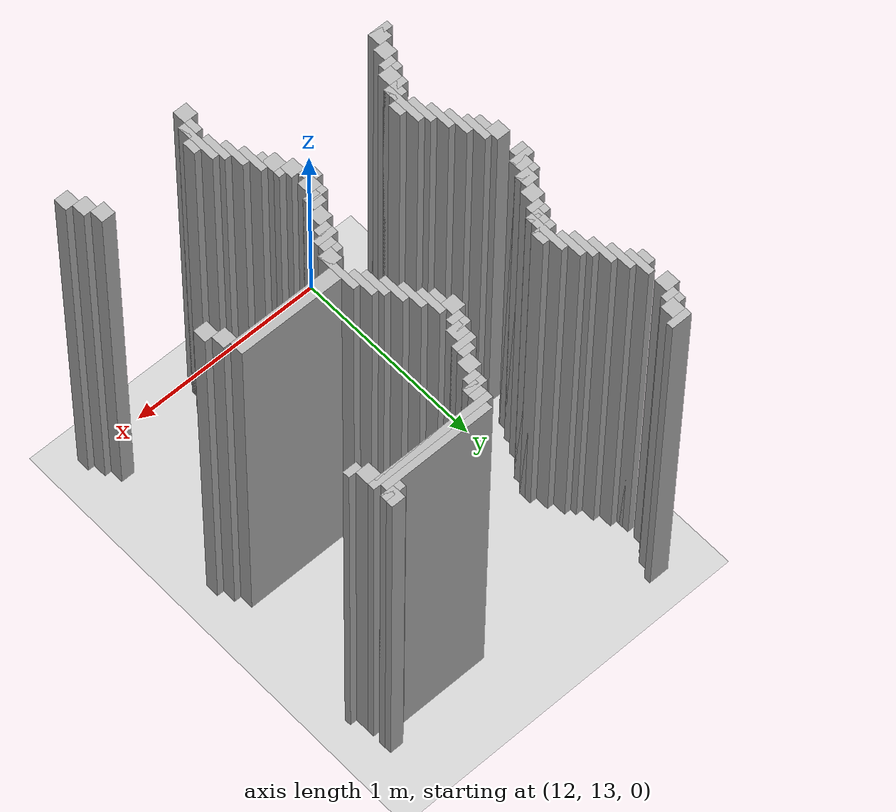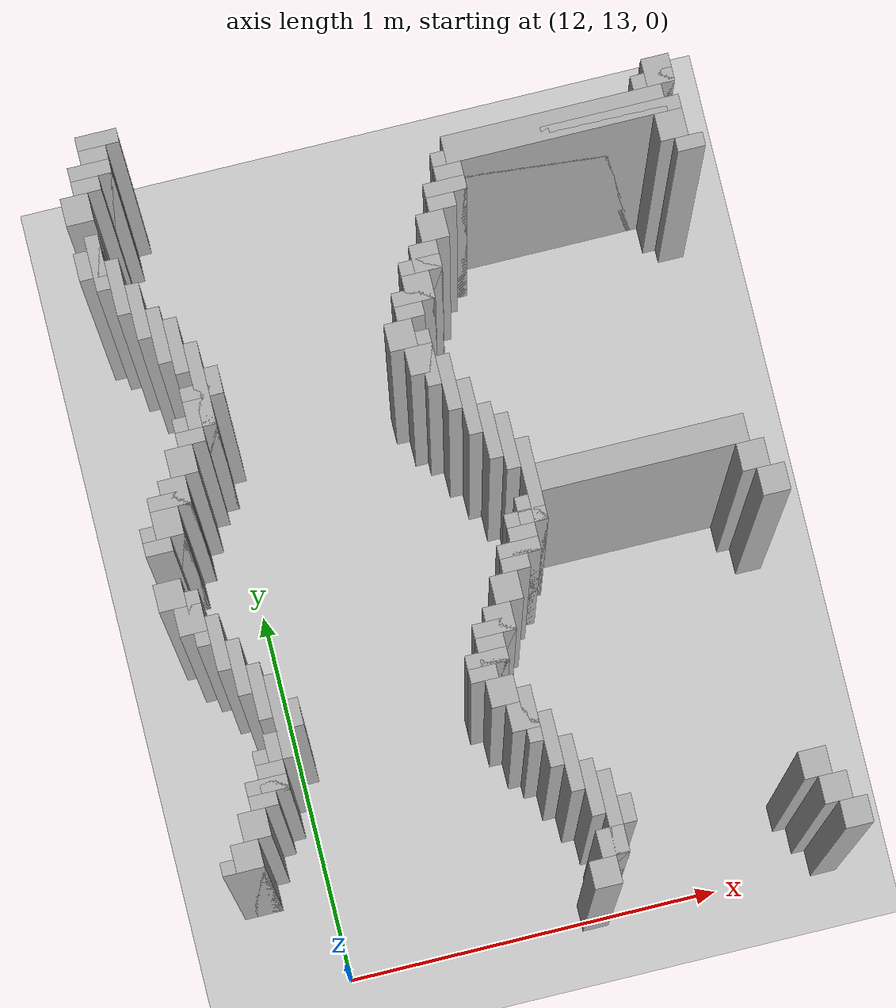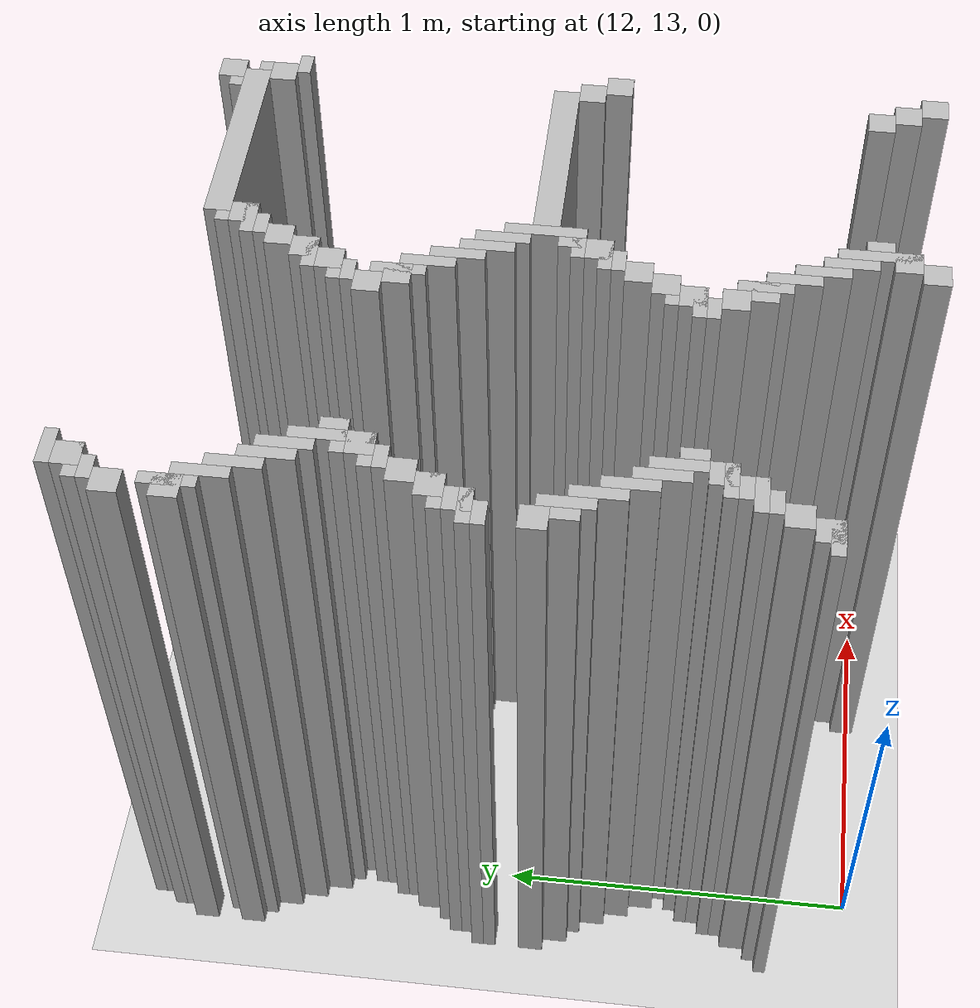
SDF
<sdf version="1.6">
 <world name="slam_world">
  <model name="ground_plane">
   <static>true</static>
   <link name="link">
    <collision name="collision">
     <geometry><plane><normal>0 0 1</normal><size>100 100</size></plane></geometry>
    </collision>
    <visual name="visual">
     <geometry><plane><normal>0 0 1</normal><size>100 100</size></plane></geometry>
     <material>
      <ambient>0.8 0.8 0.8 1</ambient>
      <diffuse>0.8 0.8 0.8 1</diffuse>
      <specular>0.8 0.8 0.8 1</specular>
     </material>
    </visual>
   </link>
  </model>
  <model name="wall_797">
   <static>true</static>
   <pose>11.885150812064964 15.052204176334106 1.0 0 0 0</pose>
   <link name="link">
    <collision name="collision">
     <geometry><box><size>0.10440835266821345 0.03480278422273782 2.0</size></box></geometry>
    </collision>
    <visual name="visual">
     <geometry><box><size>0.10440835266821345 0.03480278422273782 2.0</size></box></geometry>
     <material><ambient>0.5 0.5 0.5 1</ambient><diffuse>0.7 0.7 0.7 1</diffuse></material>
    </visual>
   </link>
  </model>
  <model name="wall_809">
   <static>true</static>
   <pose>11.867749419953595 15.0 1.0 0 0 0</pose>
   <link name="link">
    <collision name="collision">
     <geometry><box><size>0.06960556844547564 0.06960556844547564 2.0</size></box></geometry>
    </collision>
    <visual name="visual">
     <geometry><box><size>0.06960556844547564 0.06960556844547564 2.0</size></box></geometry>
     <material><ambient>0.5 0.5 0.5 1</ambient><diffuse>0.7 0.7 0.7 1</diffuse></material>
    </visual>
   </link>
  </model>
  <model name="wall_823">
   <static>true</static>
   <pose>11.850348027842227 14.982598607888631 1.0 0 0 0</pose>
   <link name="link">
    <collision name="collision">
     <geometry><box><size>0.10440835266821345 0.03480278422273782 2.0</size></box></geometry>
    </collision>
    <visual name="visual">
     <geometry><box><size>0.10440835266821345 0.03480278422273782 2.0</size></box></geometry>
     <material><ambient>0.5 0.5 0.5 1</ambient><diffuse>0.7 0.7 0.7 1</diffuse></material>
    </visual>
   </link>
  </model>
  <model name="wall_832">
   <static>true</static>
   <pose>11.832946635730858 14.947795823665892 1.0 0 0 0</pose>
   <link name="link">
    <collision name="collision">
     <geometry><box><size>0.06960556844547564 0.03480278422273782 2.0</size></box></geometry>
    </collision>
    <visual name="visual">
     <geometry><box><size>0.06960556844547564 0.03480278422273782 2.0</size></box></geometry>
     <material><ambient>0.5 0.5 0.5 1</ambient><diffuse>0.7 0.7 0.7 1</diffuse></material>
    </visual>
   </link>
  </model>
  <model name="wall_845">
   <static>true</static>
   <pose>11.79814385150812 14.895591647331786 1.0 0 0 0</pose>
   <link name="link">
    <collision name="collision">
     <geometry><box><size>0.06960556844547564 0.06960556844547564 2.0</size></box></geometry>
    </collision>
    <visual name="visual">
     <geometry><box><size>0.06960556844547564 0.06960556844547564 2.0</size></box></geometry>
     <material><ambient>0.5 0.5 0.5 1</ambient><diffuse>0.7 0.7 0.7 1</diffuse></material>
    </visual>
   </link>
  </model>
  <model name="wall_846">
   <static>true</static>
   <pose>13.259860788863108 14.895591647331786 1.0 0 0 0</pose>
   <link name="link">
    <collision name="collision">
     <geometry><box><size>0.06960556844547564 0.06960556844547564 2.0</size></box></geometry>
    </collision>
    <visual name="visual">
     <geometry><box><size>0.06960556844547564 0.06960556844547564 2.0</size></box></geometry>
     <material><ambient>0.5 0.5 0.5 1</ambient><diffuse>0.7 0.7 0.7 1</diffuse></material>
    </visual>
   </link>
  </model>
  <model name="wall_855">
   <static>true</static>
   <pose>13.24245939675174 14.878190255220417 1.0 0 0 0</pose>
   <link name="link">
    <collision name="collision">
     <geometry><box><size>0.10440835266821345 0.03480278422273782 2.0</size></box></geometry>
    </collision>
    <visual name="visual">
     <geometry><box><size>0.10440835266821345 0.03480278422273782 2.0</size></box></geometry>
     <material><ambient>0.5 0.5 0.5 1</ambient><diffuse>0.7 0.7 0.7 1</diffuse></material>
    </visual>
   </link>
  </model>
  <model name="wall_867">
   <static>true</static>
   <pose>12.981438515081207 14.825986078886311 1.0 0 0 0</pose>
   <link name="link">
    <collision name="collision">
     <geometry><box><size>0.5568445475638051 0.06960556844547564 2.0</size></box></geometry>
    </collision>
    <visual name="visual">
     <geometry><box><size>0.5568445475638051 0.06960556844547564 2.0</size></box></geometry>
     <material><ambient>0.5 0.5 0.5 1</ambient><diffuse>0.7 0.7 0.7 1</diffuse></material>
    </visual>
   </link>
  </model>
  <model name="wall_879">
   <static>true</static>
   <pose>11.81554524361949 14.756380510440835 1.0 0 0 0</pose>
   <link name="link">
    <collision name="collision">
     <geometry><box><size>0.03480278422273782 0.13921113689095127 2.0</size></box></geometry>
    </collision>
    <visual name="visual">
     <geometry><box><size>0.03480278422273782 0.13921113689095127 2.0</size></box></geometry>
     <material><ambient>0.5 0.5 0.5 1</ambient><diffuse>0.7 0.7 0.7 1</diffuse></material>
    </visual>
   </link>
  </model>
  <model name="wall_880">
   <static>true</static>
   <pose>12.981438515081207 14.80858468677494 1.0 0 0 0</pose>
   <link name="link">
    <collision name="collision">
     <geometry><box><size>0.6264501160092807 0.03480278422273782 2.0</size></box></geometry>
    </collision>
    <visual name="visual">
     <geometry><box><size>0.6264501160092807 0.03480278422273782 2.0</size></box></geometry>
     <material><ambient>0.5 0.5 0.5 1</ambient><diffuse>0.7 0.7 0.7 1</diffuse></material>
    </visual>
   </link>
  </model>
  <model name="wall_894">
   <static>true</static>
   <pose>11.79814385150812 14.756380510440835 1.0 0 0 0</pose>
   <link name="link">
    <collision name="collision">
     <geometry><box><size>0.06960556844547564 0.06960556844547564 2.0</size></box></geometry>
    </collision>
    <visual name="visual">
     <geometry><box><size>0.06960556844547564 0.06960556844547564 2.0</size></box></geometry>
     <material><ambient>0.5 0.5 0.5 1</ambient><diffuse>0.7 0.7 0.7 1</diffuse></material>
    </visual>
   </link>
  </model>
  <model name="wall_895">
   <static>true</static>
   <pose>12.703016241299304 14.756380510440835 1.0 0 0 0</pose>
   <link name="link">
    <collision name="collision">
     <geometry><box><size>0.06960556844547564 0.06960556844547564 2.0</size></box></geometry>
    </collision>
    <visual name="visual">
     <geometry><box><size>0.06960556844547564 0.06960556844547564 2.0</size></box></geometry>
     <material><ambient>0.5 0.5 0.5 1</ambient><diffuse>0.7 0.7 0.7 1</diffuse></material>
    </visual>
   </link>
  </model>
  <model name="wall_896">
   <static>true</static>
   <pose>13.259860788863108 14.756380510440835 1.0 0 0 0</pose>
   <link name="link">
    <collision name="collision">
     <geometry><box><size>0.06960556844547564 0.06960556844547564 2.0</size></box></geometry>
    </collision>
    <visual name="visual">
     <geometry><box><size>0.06960556844547564 0.06960556844547564 2.0</size></box></geometry>
     <material><ambient>0.5 0.5 0.5 1</ambient><diffuse>0.7 0.7 0.7 1</diffuse></material>
    </visual>
   </link>
  </model>
  <model name="wall_910">
   <static>true</static>
   <pose>11.850348027842227 14.68677494199536 1.0 0 0 0</pose>
   <link name="link">
    <collision name="collision">
     <geometry><box><size>0.03480278422273782 0.13921113689095127 2.0</size></box></geometry>
    </collision>
    <visual name="visual">
     <geometry><box><size>0.03480278422273782 0.13921113689095127 2.0</size></box></geometry>
     <material><ambient>0.5 0.5 0.5 1</ambient><diffuse>0.7 0.7 0.7 1</diffuse></material>
    </visual>
   </link>
  </model>
  <model name="wall_911">
   <static>true</static>
   <pose>12.685614849187935 14.738979118329466 1.0 0 0 0</pose>
   <link name="link">
    <collision name="collision">
     <geometry><box><size>0.10440835266821345 0.03480278422273782 2.0</size></box></geometry>
    </collision>
    <visual name="visual">
     <geometry><box><size>0.10440835266821345 0.03480278422273782 2.0</size></box></geometry>
     <material><ambient>0.5 0.5 0.5 1</ambient><diffuse>0.7 0.7 0.7 1</diffuse></material>
    </visual>
   </link>
  </model>
  <model name="wall_923">
   <static>true</static>
   <pose>12.668213457076565 14.704176334106728 1.0 0 0 0</pose>
   <link name="link">
    <collision name="collision">
     <geometry><box><size>0.06960556844547564 0.03480278422273782 2.0</size></box></geometry>
    </collision>
    <visual name="visual">
     <geometry><box><size>0.06960556844547564 0.03480278422273782 2.0</size></box></geometry>
     <material><ambient>0.5 0.5 0.5 1</ambient><diffuse>0.7 0.7 0.7 1</diffuse></material>
    </visual>
   </link>
  </model>
  <model name="wall_924">
   <static>true</static>
   <pose>13.294663573085847 14.704176334106728 1.0 0 0 0</pose>
   <link name="link">
    <collision name="collision">
     <geometry><box><size>0.06960556844547564 0.03480278422273782 2.0</size></box></geometry>
    </collision>
    <visual name="visual">
     <geometry><box><size>0.06960556844547564 0.03480278422273782 2.0</size></box></geometry>
     <material><ambient>0.5 0.5 0.5 1</ambient><diffuse>0.7 0.7 0.7 1</diffuse></material>
    </visual>
   </link>
  </model>
  <model name="wall_937">
   <static>true</static>
   <pose>11.885150812064964 14.617169373549883 1.0 0 0 0</pose>
   <link name="link">
    <collision name="collision">
     <geometry><box><size>0.03480278422273782 0.13921113689095127 2.0</size></box></geometry>
    </collision>
    <visual name="visual">
     <geometry><box><size>0.03480278422273782 0.13921113689095127 2.0</size></box></geometry>
     <material><ambient>0.5 0.5 0.5 1</ambient><diffuse>0.7 0.7 0.7 1</diffuse></material>
    </visual>
   </link>
  </model>
  <model name="wall_938">
   <static>true</static>
   <pose>12.633410672853827 14.65197215777262 1.0 0 0 0</pose>
   <link name="link">
    <collision name="collision">
     <geometry><box><size>0.06960556844547564 0.06960556844547564 2.0</size></box></geometry>
    </collision>
    <visual name="visual">
     <geometry><box><size>0.06960556844547564 0.06960556844547564 2.0</size></box></geometry>
     <material><ambient>0.5 0.5 0.5 1</ambient><diffuse>0.7 0.7 0.7 1</diffuse></material>
    </visual>
   </link>
  </model>
  <model name="wall_953">
   <static>true</static>
   <pose>11.919953596287703 14.547563805104408 1.0 0 0 0</pose>
   <link name="link">
    <collision name="collision">
     <geometry><box><size>0.03480278422273782 0.13921113689095127 2.0</size></box></geometry>
    </collision>
    <visual name="visual">
     <geometry><box><size>0.03480278422273782 0.13921113689095127 2.0</size></box></geometry>
     <material><ambient>0.5 0.5 0.5 1</ambient><diffuse>0.7 0.7 0.7 1</diffuse></material>
    </visual>
   </link>
  </model>
  <model name="wall_954">
   <static>true</static>
   <pose>12.59860788863109 14.582366589327146 1.0 0 0 0</pose>
   <link name="link">
    <collision name="collision">
     <geometry><box><size>0.06960556844547564 0.06960556844547564 2.0</size></box></geometry>
    </collision>
    <visual name="visual">
     <geometry><box><size>0.06960556844547564 0.06960556844547564 2.0</size></box></geometry>
     <material><ambient>0.5 0.5 0.5 1</ambient><diffuse>0.7 0.7 0.7 1</diffuse></material>
    </visual>
   </link>
  </model>
  <model name="wall_969">
   <static>true</static>
   <pose>11.95475638051044 14.512761020881669 1.0 0 0 0</pose>
   <link name="link">
    <collision name="collision">
     <geometry><box><size>0.03480278422273782 0.13921113689095127 2.0</size></box></geometry>
    </collision>
    <visual name="visual">
     <geometry><box><size>0.03480278422273782 0.13921113689095127 2.0</size></box></geometry>
     <material><ambient>0.5 0.5 0.5 1</ambient><diffuse>0.7 0.7 0.7 1</diffuse></material>
    </visual>
   </link>
  </model>
  <model name="wall_970">
   <static>true</static>
   <pose>12.581206496519721 14.564965197215777 1.0 0 0 0</pose>
   <link name="link">
    <collision name="collision">
     <geometry><box><size>0.10440835266821345 0.03480278422273782 2.0</size></box></geometry>
    </collision>
    <visual name="visual">
     <geometry><box><size>0.10440835266821345 0.03480278422273782 2.0</size></box></geometry>
     <material><ambient>0.5 0.5 0.5 1</ambient><diffuse>0.7 0.7 0.7 1</diffuse></material>
    </visual>
   </link>
  </model>
  <model name="wall_979">
   <static>true</static>
   <pose>12.563805104408353 14.512761020881669 1.0 0 0 0</pose>
   <link name="link">
    <collision name="collision">
     <geometry><box><size>0.06960556844547564 0.06960556844547564 2.0</size></box></geometry>
    </collision>
    <visual name="visual">
     <geometry><box><size>0.06960556844547564 0.06960556844547564 2.0</size></box></geometry>
     <material><ambient>0.5 0.5 0.5 1</ambient><diffuse>0.7 0.7 0.7 1</diffuse></material>
    </visual>
   </link>
  </model>
  <model name="wall_992">
   <static>true</static>
   <pose>11.989559164733178 14.408352668213457 1.0 0 0 0</pose>
   <link name="link">
    <collision name="collision">
     <geometry><box><size>0.03480278422273782 0.2088167053364269 2.0</size></box></geometry>
    </collision>
    <visual name="visual">
     <geometry><box><size>0.03480278422273782 0.2088167053364269 2.0</size></box></geometry>
     <material><ambient>0.5 0.5 0.5 1</ambient><diffuse>0.7 0.7 0.7 1</diffuse></material>
    </visual>
   </link>
  </model>
  <model name="wall_993">
   <static>true</static>
   <pose>12.546403712296984 14.4953596287703 1.0 0 0 0</pose>
   <link name="link">
    <collision name="collision">
     <geometry><box><size>0.10440835266821345 0.03480278422273782 2.0</size></box></geometry>
    </collision>
    <visual name="visual">
     <geometry><box><size>0.10440835266821345 0.03480278422273782 2.0</size></box></geometry>
     <material><ambient>0.5 0.5 0.5 1</ambient><diffuse>0.7 0.7 0.7 1</diffuse></material>
    </visual>
   </link>
  </model>
  <model name="wall_1002">
   <static>true</static>
   <pose>12.529002320185615 14.460556844547563 1.0 0 0 0</pose>
   <link name="link">
    <collision name="collision">
     <geometry><box><size>0.06960556844547564 0.03480278422273782 2.0</size></box></geometry>
    </collision>
    <visual name="visual">
     <geometry><box><size>0.06960556844547564 0.03480278422273782 2.0</size></box></geometry>
     <material><ambient>0.5 0.5 0.5 1</ambient><diffuse>0.7 0.7 0.7 1</diffuse></material>
    </visual>
   </link>
  </model>
  <model name="wall_1014">
   <static>true</static>
   <pose>12.024361948955915 14.408352668213457 1.0 0 0 0</pose>
   <link name="link">
    <collision name="collision">
     <geometry><box><size>0.03480278422273782 0.06960556844547564 2.0</size></box></geometry>
    </collision>
    <visual name="visual">
     <geometry><box><size>0.03480278422273782 0.06960556844547564 2.0</size></box></geometry>
     <material><ambient>0.5 0.5 0.5 1</ambient><diffuse>0.7 0.7 0.7 1</diffuse></material>
    </visual>
   </link>
  </model>
  <model name="wall_1015">
   <static>true</static>
   <pose>12.494199535962876 14.408352668213457 1.0 0 0 0</pose>
   <link name="link">
    <collision name="collision">
     <geometry><box><size>0.06960556844547564 0.06960556844547564 2.0</size></box></geometry>
    </collision>
    <visual name="visual">
     <geometry><box><size>0.06960556844547564 0.06960556844547564 2.0</size></box></geometry>
     <material><ambient>0.5 0.5 0.5 1</ambient><diffuse>0.7 0.7 0.7 1</diffuse></material>
    </visual>
   </link>
  </model>
  <model name="wall_1027">
   <static>true</static>
   <pose>11.989559164733178 14.390951276102088 1.0 0 0 0</pose>
   <link name="link">
    <collision name="collision">
     <geometry><box><size>0.10440835266821345 0.03480278422273782 2.0</size></box></geometry>
    </collision>
    <visual name="visual">
     <geometry><box><size>0.10440835266821345 0.03480278422273782 2.0</size></box></geometry>
     <material><ambient>0.5 0.5 0.5 1</ambient><diffuse>0.7 0.7 0.7 1</diffuse></material>
    </visual>
   </link>
  </model>
  <model name="wall_1028">
   <static>true</static>
   <pose>12.546403712296984 14.33874709976798 1.0 0 0 0</pose>
   <link name="link">
    <collision name="collision">
     <geometry><box><size>0.03480278422273782 0.13921113689095127 2.0</size></box></geometry>
    </collision>
    <visual name="visual">
     <geometry><box><size>0.03480278422273782 0.13921113689095127 2.0</size></box></geometry>
     <material><ambient>0.5 0.5 0.5 1</ambient><diffuse>0.7 0.7 0.7 1</diffuse></material>
    </visual>
   </link>
  </model>
  <model name="wall_1039">
   <static>true</static>
   <pose>11.97215777262181 14.33874709976798 1.0 0 0 0</pose>
   <link name="link">
    <collision name="collision">
     <geometry><box><size>0.06960556844547564 0.06960556844547564 2.0</size></box></geometry>
    </collision>
    <visual name="visual">
     <geometry><box><size>0.06960556844547564 0.06960556844547564 2.0</size></box></geometry>
     <material><ambient>0.5 0.5 0.5 1</ambient><diffuse>0.7 0.7 0.7 1</diffuse></material>
    </visual>
   </link>
  </model>
  <model name="wall_1040">
   <static>true</static>
   <pose>12.529002320185615 14.33874709976798 1.0 0 0 0</pose>
   <link name="link">
    <collision name="collision">
     <geometry><box><size>0.06960556844547564 0.06960556844547564 2.0</size></box></geometry>
    </collision>
    <visual name="visual">
     <geometry><box><size>0.06960556844547564 0.06960556844547564 2.0</size></box></geometry>
     <material><ambient>0.5 0.5 0.5 1</ambient><diffuse>0.7 0.7 0.7 1</diffuse></material>
    </visual>
   </link>
  </model>
  <model name="wall_1051">
   <static>true</static>
   <pose>11.95475638051044 14.321345707656612 1.0 0 0 0</pose>
   <link name="link">
    <collision name="collision">
     <geometry><box><size>0.10440835266821345 0.03480278422273782 2.0</size></box></geometry>
    </collision>
    <visual name="visual">
     <geometry><box><size>0.10440835266821345 0.03480278422273782 2.0</size></box></geometry>
     <material><ambient>0.5 0.5 0.5 1</ambient><diffuse>0.7 0.7 0.7 1</diffuse></material>
    </visual>
   </link>
  </model>
  <model name="wall_1052">
   <static>true</static>
   <pose>12.581206496519721 14.269141531322505 1.0 0 0 0</pose>
   <link name="link">
    <collision name="collision">
     <geometry><box><size>0.03480278422273782 0.13921113689095127 2.0</size></box></geometry>
    </collision>
    <visual name="visual">
     <geometry><box><size>0.03480278422273782 0.13921113689095127 2.0</size></box></geometry>
     <material><ambient>0.5 0.5 0.5 1</ambient><diffuse>0.7 0.7 0.7 1</diffuse></material>
    </visual>
   </link>
  </model>
  <model name="wall_1060">
   <static>true</static>
   <pose>11.937354988399072 14.286542923433874 1.0 0 0 0</pose>
   <link name="link">
    <collision name="collision">
     <geometry><box><size>0.06960556844547564 0.03480278422273782 2.0</size></box></geometry>
    </collision>
    <visual name="visual">
     <geometry><box><size>0.06960556844547564 0.03480278422273782 2.0</size></box></geometry>
     <material><ambient>0.5 0.5 0.5 1</ambient><diffuse>0.7 0.7 0.7 1</diffuse></material>
    </visual>
   </link>
  </model>
  <model name="wall_1070">
   <static>true</static>
   <pose>11.902552204176333 14.234338747099768 1.0 0 0 0</pose>
   <link name="link">
    <collision name="collision">
     <geometry><box><size>0.06960556844547564 0.06960556844547564 2.0</size></box></geometry>
    </collision>
    <visual name="visual">
     <geometry><box><size>0.06960556844547564 0.06960556844547564 2.0</size></box></geometry>
     <material><ambient>0.5 0.5 0.5 1</ambient><diffuse>0.7 0.7 0.7 1</diffuse></material>
    </visual>
   </link>
  </model>
  <model name="wall_1071">
   <static>true</static>
   <pose>12.616009280742459 14.199535962877029 1.0 0 0 0</pose>
   <link name="link">
    <collision name="collision">
     <geometry><box><size>0.03480278422273782 0.13921113689095127 2.0</size></box></geometry>
    </collision>
    <visual name="visual">
     <geometry><box><size>0.03480278422273782 0.13921113689095127 2.0</size></box></geometry>
     <material><ambient>0.5 0.5 0.5 1</ambient><diffuse>0.7 0.7 0.7 1</diffuse></material>
    </visual>
   </link>
  </model>
  <model name="wall_1082">
   <static>true</static>
   <pose>11.867749419953595 14.164733178654291 1.0 0 0 0</pose>
   <link name="link">
    <collision name="collision">
     <geometry><box><size>0.06960556844547564 0.06960556844547564 2.0</size></box></geometry>
    </collision>
    <visual name="visual">
     <geometry><box><size>0.06960556844547564 0.06960556844547564 2.0</size></box></geometry>
     <material><ambient>0.5 0.5 0.5 1</ambient><diffuse>0.7 0.7 0.7 1</diffuse></material>
    </visual>
   </link>
  </model>
  <model name="wall_1083">
   <static>true</static>
   <pose>12.650812064965196 14.129930394431554 1.0 0 0 0</pose>
   <link name="link">
    <collision name="collision">
     <geometry><box><size>0.03480278422273782 0.13921113689095127 2.0</size></box></geometry>
    </collision>
    <visual name="visual">
     <geometry><box><size>0.03480278422273782 0.13921113689095127 2.0</size></box></geometry>
     <material><ambient>0.5 0.5 0.5 1</ambient><diffuse>0.7 0.7 0.7 1</diffuse></material>
    </visual>
   </link>
  </model>
  <model name="wall_1094">
   <static>true</static>
   <pose>11.850348027842227 14.147331786542923 1.0 0 0 0</pose>
   <link name="link">
    <collision name="collision">
     <geometry><box><size>0.10440835266821345 0.03480278422273782 2.0</size></box></geometry>
    </collision>
    <visual name="visual">
     <geometry><box><size>0.10440835266821345 0.03480278422273782 2.0</size></box></geometry>
     <material><ambient>0.5 0.5 0.5 1</ambient><diffuse>0.7 0.7 0.7 1</diffuse></material>
    </visual>
   </link>
  </model>
  <model name="wall_1095">
   <static>true</static>
   <pose>12.685614849187935 14.095127610208817 1.0 0 0 0</pose>
   <link name="link">
    <collision name="collision">
     <geometry><box><size>0.03480278422273782 0.13921113689095127 2.0</size></box></geometry>
    </collision>
    <visual name="visual">
     <geometry><box><size>0.03480278422273782 0.13921113689095127 2.0</size></box></geometry>
     <material><ambient>0.5 0.5 0.5 1</ambient><diffuse>0.7 0.7 0.7 1</diffuse></material>
    </visual>
   </link>
  </model>
  <model name="wall_1103">
   <static>true</static>
   <pose>11.832946635730858 14.095127610208817 1.0 0 0 0</pose>
   <link name="link">
    <collision name="collision">
     <geometry><box><size>0.06960556844547564 0.06960556844547564 2.0</size></box></geometry>
    </collision>
    <visual name="visual">
     <geometry><box><size>0.06960556844547564 0.06960556844547564 2.0</size></box></geometry>
     <material><ambient>0.5 0.5 0.5 1</ambient><diffuse>0.7 0.7 0.7 1</diffuse></material>
    </visual>
   </link>
  </model>
  <model name="wall_1113">
   <static>true</static>
   <pose>11.81554524361949 14.077726218097448 1.0 0 0 0</pose>
   <link name="link">
    <collision name="collision">
     <geometry><box><size>0.10440835266821345 0.03480278422273782 2.0</size></box></geometry>
    </collision>
    <visual name="visual">
     <geometry><box><size>0.10440835266821345 0.03480278422273782 2.0</size></box></geometry>
     <material><ambient>0.5 0.5 0.5 1</ambient><diffuse>0.7 0.7 0.7 1</diffuse></material>
    </visual>
   </link>
  </model>
  <model name="wall_1114">
   <static>true</static>
   <pose>12.720417633410673 13.990719257540603 1.0 0 0 0</pose>
   <link name="link">
    <collision name="collision">
     <geometry><box><size>0.03480278422273782 0.2088167053364269 2.0</size></box></geometry>
    </collision>
    <visual name="visual">
     <geometry><box><size>0.03480278422273782 0.2088167053364269 2.0</size></box></geometry>
     <material><ambient>0.5 0.5 0.5 1</ambient><diffuse>0.7 0.7 0.7 1</diffuse></material>
    </visual>
   </link>
  </model>
  <model name="wall_1122">
   <static>true</static>
   <pose>11.79814385150812 14.042923433874709 1.0 0 0 0</pose>
   <link name="link">
    <collision name="collision">
     <geometry><box><size>0.06960556844547564 0.03480278422273782 2.0</size></box></geometry>
    </collision>
    <visual name="visual">
     <geometry><box><size>0.06960556844547564 0.03480278422273782 2.0</size></box></geometry>
     <material><ambient>0.5 0.5 0.5 1</ambient><diffuse>0.7 0.7 0.7 1</diffuse></material>
    </visual>
   </link>
  </model>
  <model name="wall_1135">
   <static>true</static>
   <pose>12.998839907192576 13.990719257540603 1.0 0 0 0</pose>
   <link name="link">
    <collision name="collision">
     <geometry><box><size>0.5220417633410672 0.06960556844547564 2.0</size></box></geometry>
    </collision>
    <visual name="visual">
     <geometry><box><size>0.5220417633410672 0.06960556844547564 2.0</size></box></geometry>
     <material><ambient>0.5 0.5 0.5 1</ambient><diffuse>0.7 0.7 0.7 1</diffuse></material>
    </visual>
   </link>
  </model>
  <model name="wall_1150">
   <static>true</static>
   <pose>11.79814385150812 13.921113689095128 1.0 0 0 0</pose>
   <link name="link">
    <collision name="collision">
     <geometry><box><size>0.06960556844547564 0.06960556844547564 2.0</size></box></geometry>
    </collision>
    <visual name="visual">
     <geometry><box><size>0.06960556844547564 0.06960556844547564 2.0</size></box></geometry>
     <material><ambient>0.5 0.5 0.5 1</ambient><diffuse>0.7 0.7 0.7 1</diffuse></material>
    </visual>
   </link>
  </model>
  <model name="wall_1151">
   <static>true</static>
   <pose>12.703016241299304 13.921113689095128 1.0 0 0 0</pose>
   <link name="link">
    <collision name="collision">
     <geometry><box><size>0.06960556844547564 0.06960556844547564 2.0</size></box></geometry>
    </collision>
    <visual name="visual">
     <geometry><box><size>0.06960556844547564 0.06960556844547564 2.0</size></box></geometry>
     <material><ambient>0.5 0.5 0.5 1</ambient><diffuse>0.7 0.7 0.7 1</diffuse></material>
    </visual>
   </link>
  </model>
  <model name="wall_1152">
   <static>true</static>
   <pose>13.259860788863108 13.921113689095128 1.0 0 0 0</pose>
   <link name="link">
    <collision name="collision">
     <geometry><box><size>0.06960556844547564 0.06960556844547564 2.0</size></box></geometry>
    </collision>
    <visual name="visual">
     <geometry><box><size>0.06960556844547564 0.06960556844547564 2.0</size></box></geometry>
     <material><ambient>0.5 0.5 0.5 1</ambient><diffuse>0.7 0.7 0.7 1</diffuse></material>
    </visual>
   </link>
  </model>
  <model name="wall_1167">
   <static>true</static>
   <pose>11.850348027842227 13.851508120649651 1.0 0 0 0</pose>
   <link name="link">
    <collision name="collision">
     <geometry><box><size>0.03480278422273782 0.13921113689095127 2.0</size></box></geometry>
    </collision>
    <visual name="visual">
     <geometry><box><size>0.03480278422273782 0.13921113689095127 2.0</size></box></geometry>
     <material><ambient>0.5 0.5 0.5 1</ambient><diffuse>0.7 0.7 0.7 1</diffuse></material>
    </visual>
   </link>
  </model>
  <model name="wall_1168">
   <static>true</static>
   <pose>12.685614849187935 13.903712296983759 1.0 0 0 0</pose>
   <link name="link">
    <collision name="collision">
     <geometry><box><size>0.10440835266821345 0.03480278422273782 2.0</size></box></geometry>
    </collision>
    <visual name="visual">
     <geometry><box><size>0.10440835266821345 0.03480278422273782 2.0</size></box></geometry>
     <material><ambient>0.5 0.5 0.5 1</ambient><diffuse>0.7 0.7 0.7 1</diffuse></material>
    </visual>
   </link>
  </model>
  <model name="wall_1184">
   <static>true</static>
   <pose>11.832946635730858 13.851508120649651 1.0 0 0 0</pose>
   <link name="link">
    <collision name="collision">
     <geometry><box><size>0.06960556844547564 0.06960556844547564 2.0</size></box></geometry>
    </collision>
    <visual name="visual">
     <geometry><box><size>0.06960556844547564 0.06960556844547564 2.0</size></box></geometry>
     <material><ambient>0.5 0.5 0.5 1</ambient><diffuse>0.7 0.7 0.7 1</diffuse></material>
    </visual>
   </link>
  </model>
  <model name="wall_1185">
   <static>true</static>
   <pose>12.668213457076565 13.851508120649651 1.0 0 0 0</pose>
   <link name="link">
    <collision name="collision">
     <geometry><box><size>0.06960556844547564 0.06960556844547564 2.0</size></box></geometry>
    </collision>
    <visual name="visual">
     <geometry><box><size>0.06960556844547564 0.06960556844547564 2.0</size></box></geometry>
     <material><ambient>0.5 0.5 0.5 1</ambient><diffuse>0.7 0.7 0.7 1</diffuse></material>
    </visual>
   </link>
  </model>
  <model name="wall_1186">
   <static>true</static>
   <pose>13.294663573085847 13.851508120649651 1.0 0 0 0</pose>
   <link name="link">
    <collision name="collision">
     <geometry><box><size>0.06960556844547564 0.06960556844547564 2.0</size></box></geometry>
    </collision>
    <visual name="visual">
     <geometry><box><size>0.06960556844547564 0.06960556844547564 2.0</size></box></geometry>
     <material><ambient>0.5 0.5 0.5 1</ambient><diffuse>0.7 0.7 0.7 1</diffuse></material>
    </visual>
   </link>
  </model>
  <model name="wall_1201">
   <static>true</static>
   <pose>11.885150812064964 13.781902552204176 1.0 0 0 0</pose>
   <link name="link">
    <collision name="collision">
     <geometry><box><size>0.03480278422273782 0.13921113689095127 2.0</size></box></geometry>
    </collision>
    <visual name="visual">
     <geometry><box><size>0.03480278422273782 0.13921113689095127 2.0</size></box></geometry>
     <material><ambient>0.5 0.5 0.5 1</ambient><diffuse>0.7 0.7 0.7 1</diffuse></material>
    </visual>
   </link>
  </model>
  <model name="wall_1202">
   <static>true</static>
   <pose>12.650812064965196 13.834106728538282 1.0 0 0 0</pose>
   <link name="link">
    <collision name="collision">
     <geometry><box><size>0.10440835266821345 0.03480278422273782 2.0</size></box></geometry>
    </collision>
    <visual name="visual">
     <geometry><box><size>0.10440835266821345 0.03480278422273782 2.0</size></box></geometry>
     <material><ambient>0.5 0.5 0.5 1</ambient><diffuse>0.7 0.7 0.7 1</diffuse></material>
    </visual>
   </link>
  </model>
  <model name="wall_1210">
   <static>true</static>
   <pose>12.633410672853827 13.799303944315545 1.0 0 0 0</pose>
   <link name="link">
    <collision name="collision">
     <geometry><box><size>0.06960556844547564 0.03480278422273782 2.0</size></box></geometry>
    </collision>
    <visual name="visual">
     <geometry><box><size>0.06960556844547564 0.03480278422273782 2.0</size></box></geometry>
     <material><ambient>0.5 0.5 0.5 1</ambient><diffuse>0.7 0.7 0.7 1</diffuse></material>
    </visual>
   </link>
  </model>
  <model name="wall_1224">
   <static>true</static>
   <pose>11.919953596287703 13.7122969837587 1.0 0 0 0</pose>
   <link name="link">
    <collision name="collision">
     <geometry><box><size>0.03480278422273782 0.13921113689095127 2.0</size></box></geometry>
    </collision>
    <visual name="visual">
     <geometry><box><size>0.03480278422273782 0.13921113689095127 2.0</size></box></geometry>
     <material><ambient>0.5 0.5 0.5 1</ambient><diffuse>0.7 0.7 0.7 1</diffuse></material>
    </visual>
   </link>
  </model>
  <model name="wall_1225">
   <static>true</static>
   <pose>12.59860788863109 13.747099767981437 1.0 0 0 0</pose>
   <link name="link">
    <collision name="collision">
     <geometry><box><size>0.06960556844547564 0.06960556844547564 2.0</size></box></geometry>
    </collision>
    <visual name="visual">
     <geometry><box><size>0.06960556844547564 0.06960556844547564 2.0</size></box></geometry>
     <material><ambient>0.5 0.5 0.5 1</ambient><diffuse>0.7 0.7 0.7 1</diffuse></material>
    </visual>
   </link>
  </model>
  <model name="wall_1241">
   <static>true</static>
   <pose>11.95475638051044 13.642691415313225 1.0 0 0 0</pose>
   <link name="link">
    <collision name="collision">
     <geometry><box><size>0.03480278422273782 0.13921113689095127 2.0</size></box></geometry>
    </collision>
    <visual name="visual">
     <geometry><box><size>0.03480278422273782 0.13921113689095127 2.0</size></box></geometry>
     <material><ambient>0.5 0.5 0.5 1</ambient><diffuse>0.7 0.7 0.7 1</diffuse></material>
    </visual>
   </link>
  </model>
  <model name="wall_1242">
   <static>true</static>
   <pose>12.563805104408353 13.677494199535962 1.0 0 0 0</pose>
   <link name="link">
    <collision name="collision">
     <geometry><box><size>0.06960556844547564 0.06960556844547564 2.0</size></box></geometry>
    </collision>
    <visual name="visual">
     <geometry><box><size>0.06960556844547564 0.06960556844547564 2.0</size></box></geometry>
     <material><ambient>0.5 0.5 0.5 1</ambient><diffuse>0.7 0.7 0.7 1</diffuse></material>
    </visual>
   </link>
  </model>
  <model name="wall_1258">
   <static>true</static>
   <pose>11.989559164733178 13.573085846867748 1.0 0 0 0</pose>
   <link name="link">
    <collision name="collision">
     <geometry><box><size>0.03480278422273782 0.2088167053364269 2.0</size></box></geometry>
    </collision>
    <visual name="visual">
     <geometry><box><size>0.03480278422273782 0.2088167053364269 2.0</size></box></geometry>
     <material><ambient>0.5 0.5 0.5 1</ambient><diffuse>0.7 0.7 0.7 1</diffuse></material>
    </visual>
   </link>
  </model>
  <model name="wall_1259">
   <static>true</static>
   <pose>12.546403712296984 13.660092807424594 1.0 0 0 0</pose>
   <link name="link">
    <collision name="collision">
     <geometry><box><size>0.10440835266821345 0.03480278422273782 2.0</size></box></geometry>
    </collision>
    <visual name="visual">
     <geometry><box><size>0.10440835266821345 0.03480278422273782 2.0</size></box></geometry>
     <material><ambient>0.5 0.5 0.5 1</ambient><diffuse>0.7 0.7 0.7 1</diffuse></material>
    </visual>
   </link>
  </model>
  <model name="wall_1267">
   <static>true</static>
   <pose>12.529002320185615 13.607888631090487 1.0 0 0 0</pose>
   <link name="link">
    <collision name="collision">
     <geometry><box><size>0.06960556844547564 0.06960556844547564 2.0</size></box></geometry>
    </collision>
    <visual name="visual">
     <geometry><box><size>0.06960556844547564 0.06960556844547564 2.0</size></box></geometry>
     <material><ambient>0.5 0.5 0.5 1</ambient><diffuse>0.7 0.7 0.7 1</diffuse></material>
    </visual>
   </link>
  </model>
  <model name="wall_1280">
   <static>true</static>
   <pose>12.024361948955915 13.573085846867748 1.0 0 0 0</pose>
   <link name="link">
    <collision name="collision">
     <geometry><box><size>0.03480278422273782 0.06960556844547564 2.0</size></box></geometry>
    </collision>
    <visual name="visual">
     <geometry><box><size>0.03480278422273782 0.06960556844547564 2.0</size></box></geometry>
     <material><ambient>0.5 0.5 0.5 1</ambient><diffuse>0.7 0.7 0.7 1</diffuse></material>
    </visual>
   </link>
  </model>
  <model name="wall_1281">
   <static>true</static>
   <pose>12.511600928074245 13.590487238979117 1.0 0 0 0</pose>
   <link name="link">
    <collision name="collision">
     <geometry><box><size>0.10440835266821345 0.03480278422273782 2.0</size></box></geometry>
    </collision>
    <visual name="visual">
     <geometry><box><size>0.10440835266821345 0.03480278422273782 2.0</size></box></geometry>
     <material><ambient>0.5 0.5 0.5 1</ambient><diffuse>0.7 0.7 0.7 1</diffuse></material>
    </visual>
   </link>
  </model>
  <model name="wall_1288">
   <static>true</static>
   <pose>12.494199535962876 13.55568445475638 1.0 0 0 0</pose>
   <link name="link">
    <collision name="collision">
     <geometry><box><size>0.06960556844547564 0.03480278422273782 2.0</size></box></geometry>
    </collision>
    <visual name="visual">
     <geometry><box><size>0.06960556844547564 0.03480278422273782 2.0</size></box></geometry>
     <material><ambient>0.5 0.5 0.5 1</ambient><diffuse>0.7 0.7 0.7 1</diffuse></material>
    </visual>
   </link>
  </model>
  <model name="wall_1301">
   <static>true</static>
   <pose>11.97215777262181 13.503480278422273 1.0 0 0 0</pose>
   <link name="link">
    <collision name="collision">
     <geometry><box><size>0.06960556844547564 0.06960556844547564 2.0</size></box></geometry>
    </collision>
    <visual name="visual">
     <geometry><box><size>0.06960556844547564 0.06960556844547564 2.0</size></box></geometry>
     <material><ambient>0.5 0.5 0.5 1</ambient><diffuse>0.7 0.7 0.7 1</diffuse></material>
    </visual>
   </link>
  </model>
  <model name="wall_1302">
   <static>true</static>
   <pose>12.529002320185615 13.503480278422273 1.0 0 0 0</pose>
   <link name="link">
    <collision name="collision">
     <geometry><box><size>0.06960556844547564 0.06960556844547564 2.0</size></box></geometry>
    </collision>
    <visual name="visual">
     <geometry><box><size>0.06960556844547564 0.06960556844547564 2.0</size></box></geometry>
     <material><ambient>0.5 0.5 0.5 1</ambient><diffuse>0.7 0.7 0.7 1</diffuse></material>
    </visual>
   </link>
  </model>
  <model name="wall_1315">
   <static>true</static>
   <pose>11.95475638051044 13.486078886310905 1.0 0 0 0</pose>
   <link name="link">
    <collision name="collision">
     <geometry><box><size>0.10440835266821345 0.03480278422273782 2.0</size></box></geometry>
    </collision>
    <visual name="visual">
     <geometry><box><size>0.10440835266821345 0.03480278422273782 2.0</size></box></geometry>
     <material><ambient>0.5 0.5 0.5 1</ambient><diffuse>0.7 0.7 0.7 1</diffuse></material>
    </visual>
   </link>
  </model>
  <model name="wall_1316">
   <static>true</static>
   <pose>12.581206496519721 13.433874709976797 1.0 0 0 0</pose>
   <link name="link">
    <collision name="collision">
     <geometry><box><size>0.03480278422273782 0.13921113689095127 2.0</size></box></geometry>
    </collision>
    <visual name="visual">
     <geometry><box><size>0.03480278422273782 0.13921113689095127 2.0</size></box></geometry>
     <material><ambient>0.5 0.5 0.5 1</ambient><diffuse>0.7 0.7 0.7 1</diffuse></material>
    </visual>
   </link>
  </model>
  <model name="wall_1329">
   <static>true</static>
   <pose>11.937354988399072 13.433874709976797 1.0 0 0 0</pose>
   <link name="link">
    <collision name="collision">
     <geometry><box><size>0.06960556844547564 0.06960556844547564 2.0</size></box></geometry>
    </collision>
    <visual name="visual">
     <geometry><box><size>0.06960556844547564 0.06960556844547564 2.0</size></box></geometry>
     <material><ambient>0.5 0.5 0.5 1</ambient><diffuse>0.7 0.7 0.7 1</diffuse></material>
    </visual>
   </link>
  </model>
  <model name="wall_1330">
   <static>true</static>
   <pose>12.563805104408353 13.433874709976797 1.0 0 0 0</pose>
   <link name="link">
    <collision name="collision">
     <geometry><box><size>0.06960556844547564 0.06960556844547564 2.0</size></box></geometry>
    </collision>
    <visual name="visual">
     <geometry><box><size>0.06960556844547564 0.06960556844547564 2.0</size></box></geometry>
     <material><ambient>0.5 0.5 0.5 1</ambient><diffuse>0.7 0.7 0.7 1</diffuse></material>
    </visual>
   </link>
  </model>
  <model name="wall_1343">
   <static>true</static>
   <pose>11.919953596287703 13.416473317865428 1.0 0 0 0</pose>
   <link name="link">
    <collision name="collision">
     <geometry><box><size>0.10440835266821345 0.03480278422273782 2.0</size></box></geometry>
    </collision>
    <visual name="visual">
     <geometry><box><size>0.10440835266821345 0.03480278422273782 2.0</size></box></geometry>
     <material><ambient>0.5 0.5 0.5 1</ambient><diffuse>0.7 0.7 0.7 1</diffuse></material>
    </visual>
   </link>
  </model>
  <model name="wall_1344">
   <static>true</static>
   <pose>12.616009280742459 13.364269141531322 1.0 0 0 0</pose>
   <link name="link">
    <collision name="collision">
     <geometry><box><size>0.03480278422273782 0.13921113689095127 2.0</size></box></geometry>
    </collision>
    <visual name="visual">
     <geometry><box><size>0.03480278422273782 0.13921113689095127 2.0</size></box></geometry>
     <material><ambient>0.5 0.5 0.5 1</ambient><diffuse>0.7 0.7 0.7 1</diffuse></material>
    </visual>
   </link>
  </model>
  <model name="wall_1351">
   <static>true</static>
   <pose>11.902552204176333 13.38167053364269 1.0 0 0 0</pose>
   <link name="link">
    <collision name="collision">
     <geometry><box><size>0.06960556844547564 0.03480278422273782 2.0</size></box></geometry>
    </collision>
    <visual name="visual">
     <geometry><box><size>0.06960556844547564 0.03480278422273782 2.0</size></box></geometry>
     <material><ambient>0.5 0.5 0.5 1</ambient><diffuse>0.7 0.7 0.7 1</diffuse></material>
    </visual>
   </link>
  </model>
  <model name="wall_1364">
   <static>true</static>
   <pose>11.867749419953595 13.329466357308585 1.0 0 0 0</pose>
   <link name="link">
    <collision name="collision">
     <geometry><box><size>0.06960556844547564 0.06960556844547564 2.0</size></box></geometry>
    </collision>
    <visual name="visual">
     <geometry><box><size>0.06960556844547564 0.06960556844547564 2.0</size></box></geometry>
     <material><ambient>0.5 0.5 0.5 1</ambient><diffuse>0.7 0.7 0.7 1</diffuse></material>
    </visual>
   </link>
  </model>
  <model name="wall_1365">
   <static>true</static>
   <pose>12.650812064965196 13.294663573085847 1.0 0 0 0</pose>
   <link name="link">
    <collision name="collision">
     <geometry><box><size>0.03480278422273782 0.13921113689095127 2.0</size></box></geometry>
    </collision>
    <visual name="visual">
     <geometry><box><size>0.03480278422273782 0.13921113689095127 2.0</size></box></geometry>
     <material><ambient>0.5 0.5 0.5 1</ambient><diffuse>0.7 0.7 0.7 1</diffuse></material>
    </visual>
   </link>
  </model>
  <model name="wall_1378">
   <static>true</static>
   <pose>11.832946635730858 13.259860788863108 1.0 0 0 0</pose>
   <link name="link">
    <collision name="collision">
     <geometry><box><size>0.06960556844547564 0.06960556844547564 2.0</size></box></geometry>
    </collision>
    <visual name="visual">
     <geometry><box><size>0.06960556844547564 0.06960556844547564 2.0</size></box></geometry>
     <material><ambient>0.5 0.5 0.5 1</ambient><diffuse>0.7 0.7 0.7 1</diffuse></material>
    </visual>
   </link>
  </model>
  <model name="wall_1379">
   <static>true</static>
   <pose>12.685614849187935 13.22505800464037 1.0 0 0 0</pose>
   <link name="link">
    <collision name="collision">
     <geometry><box><size>0.03480278422273782 0.13921113689095127 2.0</size></box></geometry>
    </collision>
    <visual name="visual">
     <geometry><box><size>0.03480278422273782 0.13921113689095127 2.0</size></box></geometry>
     <material><ambient>0.5 0.5 0.5 1</ambient><diffuse>0.7 0.7 0.7 1</diffuse></material>
    </visual>
   </link>
  </model>
  <model name="wall_1392">
   <static>true</static>
   <pose>11.81554524361949 13.24245939675174 1.0 0 0 0</pose>
   <link name="link">
    <collision name="collision">
     <geometry><box><size>0.10440835266821345 0.03480278422273782 2.0</size></box></geometry>
    </collision>
    <visual name="visual">
     <geometry><box><size>0.10440835266821345 0.03480278422273782 2.0</size></box></geometry>
     <material><ambient>0.5 0.5 0.5 1</ambient><diffuse>0.7 0.7 0.7 1</diffuse></material>
    </visual>
   </link>
  </model>
  <model name="wall_1393">
   <static>true</static>
   <pose>12.720417633410673 13.155452436194896 1.0 0 0 0</pose>
   <link name="link">
    <collision name="collision">
     <geometry><box><size>0.03480278422273782 0.2088167053364269 2.0</size></box></geometry>
    </collision>
    <visual name="visual">
     <geometry><box><size>0.03480278422273782 0.2088167053364269 2.0</size></box></geometry>
     <material><ambient>0.5 0.5 0.5 1</ambient><diffuse>0.7 0.7 0.7 1</diffuse></material>
    </visual>
   </link>
  </model>
  <model name="wall_1415">
   <static>true</static>
   <pose>12.75522041763341 13.155452436194896 1.0 0 0 0</pose>
   <link name="link">
    <collision name="collision">
     <geometry><box><size>0.03480278422273782 0.06960556844547564 2.0</size></box></geometry>
    </collision>
    <visual name="visual">
     <geometry><box><size>0.03480278422273782 0.06960556844547564 2.0</size></box></geometry>
     <material><ambient>0.5 0.5 0.5 1</ambient><diffuse>0.7 0.7 0.7 1</diffuse></material>
    </visual>
   </link>
  </model>
  <model name="wall_1416">
   <static>true</static>
   <pose>13.22505800464037 13.155452436194896 1.0 0 0 0</pose>
   <link name="link">
    <collision name="collision">
     <geometry><box><size>0.06960556844547564 0.06960556844547564 2.0</size></box></geometry>
    </collision>
    <visual name="visual">
     <geometry><box><size>0.06960556844547564 0.06960556844547564 2.0</size></box></geometry>
     <material><ambient>0.5 0.5 0.5 1</ambient><diffuse>0.7 0.7 0.7 1</diffuse></material>
    </visual>
   </link>
  </model>
  <model name="wall_1438">
   <static>true</static>
   <pose>12.703016241299304 13.085846867749419 1.0 0 0 0</pose>
   <link name="link">
    <collision name="collision">
     <geometry><box><size>0.06960556844547564 0.06960556844547564 2.0</size></box></geometry>
    </collision>
    <visual name="visual">
     <geometry><box><size>0.06960556844547564 0.06960556844547564 2.0</size></box></geometry>
     <material><ambient>0.5 0.5 0.5 1</ambient><diffuse>0.7 0.7 0.7 1</diffuse></material>
    </visual>
   </link>
  </model>
  <model name="wall_1439">
   <static>true</static>
   <pose>13.259860788863108 13.085846867749419 1.0 0 0 0</pose>
   <link name="link">
    <collision name="collision">
     <geometry><box><size>0.06960556844547564 0.06960556844547564 2.0</size></box></geometry>
    </collision>
    <visual name="visual">
     <geometry><box><size>0.06960556844547564 0.06960556844547564 2.0</size></box></geometry>
     <material><ambient>0.5 0.5 0.5 1</ambient><diffuse>0.7 0.7 0.7 1</diffuse></material>
    </visual>
   </link>
  </model>
  <model name="wall_1460">
   <static>true</static>
   <pose>12.668213457076565 13.016241299303944 1.0 0 0 0</pose>
   <link name="link">
    <collision name="collision">
     <geometry><box><size>0.06960556844547564 0.06960556844547564 2.0</size></box></geometry>
    </collision>
    <visual name="visual">
     <geometry><box><size>0.06960556844547564 0.06960556844547564 2.0</size></box></geometry>
     <material><ambient>0.5 0.5 0.5 1</ambient><diffuse>0.7 0.7 0.7 1</diffuse></material>
    </visual>
   </link>
  </model>
  <model name="wall_1461">
   <static>true</static>
   <pose>13.294663573085847 13.016241299303944 1.0 0 0 0</pose>
   <link name="link">
    <collision name="collision">
     <geometry><box><size>0.06960556844547564 0.06960556844547564 2.0</size></box></geometry>
    </collision>
    <visual name="visual">
     <geometry><box><size>0.06960556844547564 0.06960556844547564 2.0</size></box></geometry>
     <material><ambient>0.5 0.5 0.5 1</ambient><diffuse>0.7 0.7 0.7 1</diffuse></material>
    </visual>
   </link>
  </model>
 </world>
</sdf>
